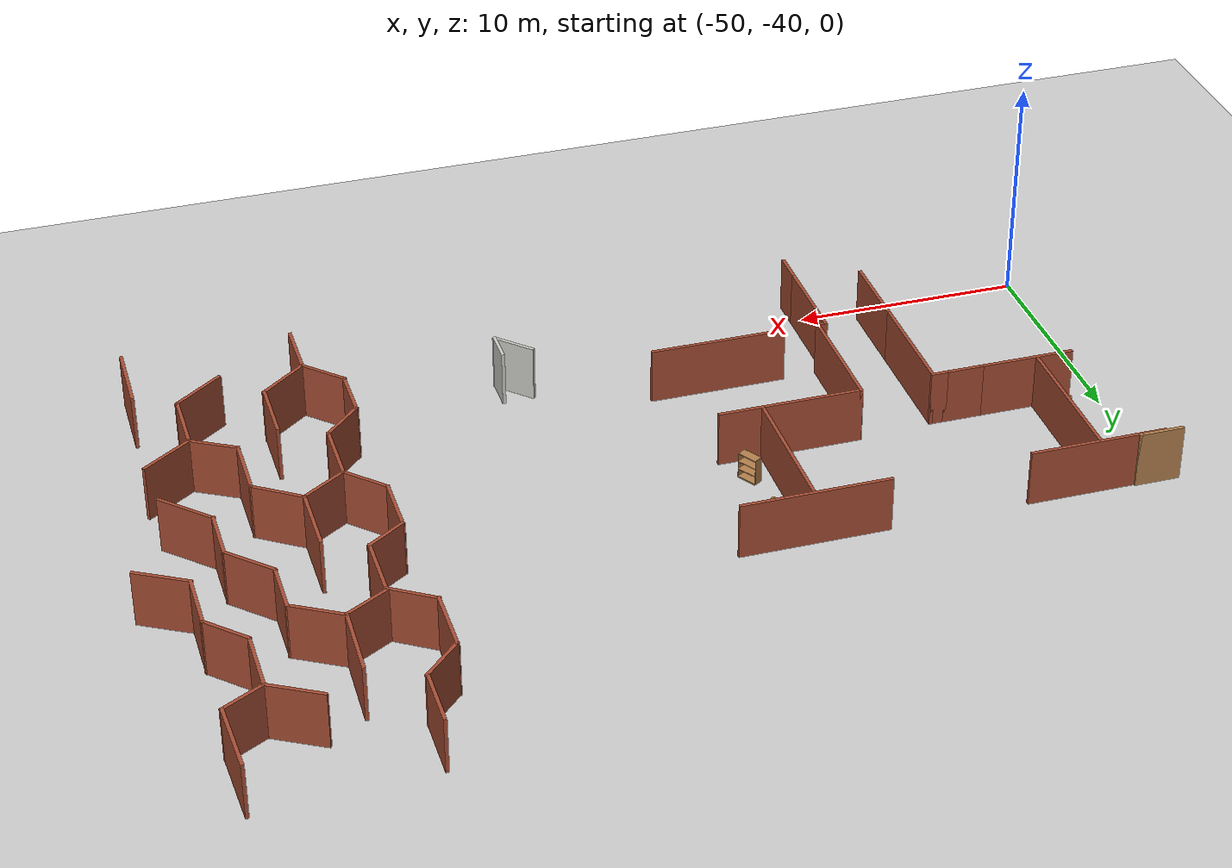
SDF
<sdf version="1.6">
 <world name="default">
  <model name="maze_rect_3">
   <pose>4e-06 -9.9e-05 0 0 -0 1.57001</pose>
   <link name="Wall_51">
    <collision name="Wall_51_Collision">
     <geometry><box><size>2.75 0.15 2.5</size></box></geometry>
     <pose>0 0 1.25 0 -0 0</pose>
    </collision>
    <visual name="Wall_51_Visual">
     <pose>0 0 1.25 0 -0 0</pose>
     <geometry><box><size>2.75 0.15 2.5</size></box></geometry>
     <material>
      <script><uri>file://media/materials/scripts/gazebo.material</uri><name>Gazebo/Bricks</name></script>
      <ambient>1 1 1 1</ambient>
     </material>
     <meta><layer>0</layer></meta>
    </visual>
    <pose>-40.4627 17.2051 0 0 -0 0</pose>
   </link>
   <link name="Wall_52">
    <collision name="Wall_52_Collision">
     <geometry><box><size>2.25 0.15 2.5</size></box></geometry>
     <pose>0 0 1.25 0 -0 0</pose>
    </collision>
    <visual name="Wall_52_Visual">
     <pose>0 0 1.25 0 -0 0</pose>
     <geometry><box><size>2.25 0.15 2.5</size></box></geometry>
     <material>
      <script><uri>file://media/materials/scripts/gazebo.material</uri><name>Gazebo/Bricks</name></script>
      <ambient>1 1 1 1</ambient>
     </material>
     <meta><layer>0</layer></meta>
    </visual>
    <pose>-38.4203 17.9476 0 0 -0 0.785398</pose>
   </link>
   <link name="Wall_53">
    <collision name="Wall_53_Collision">
     <geometry><box><size>2.5 0.15 2.5</size></box></geometry>
     <pose>0 0 1.25 0 -0 0</pose>
    </collision>
    <visual name="Wall_53_Visual">
     <pose>0 0 1.25 0 -0 0</pose>
     <geometry><box><size>2.5 0.15 2.5</size></box></geometry>
     <material>
      <script><uri>file://media/materials/scripts/gazebo.material</uri><name>Gazebo/Bricks</name></script>
      <ambient>1 1 1 1</ambient>
     </material>
     <meta><layer>0</layer></meta>
    </visual>
    <pose>-36.5028 18.69 0 0 -0 0</pose>
   </link>
   <link name="Wall_54">
    <collision name="Wall_54_Collision">
     <geometry><box><size>2.25 0.15 2.5</size></box></geometry>
     <pose>0 0 1.25 0 -0 0</pose>
    </collision>
    <visual name="Wall_54_Visual">
     <pose>0 0 1.25 0 -0 0</pose>
     <geometry><box><size>2.25 0.15 2.5</size></box></geometry>
     <material>
      <script><uri>file://media/materials/scripts/gazebo.material</uri><name>Gazebo/Bricks</name></script>
      <ambient>1 1 1 1</ambient>
     </material>
     <meta><layer>0</layer></meta>
    </visual>
    <pose>-34.5853 17.9476 0 0 -0 -0.785398</pose>
   </link>
   <link name="Wall_55">
    <collision name="Wall_55_Collision">
     <geometry><box><size>3 0.15 2.5</size></box></geometry>
     <pose>0 0 1.25 0 -0 0</pose>
    </collision>
    <visual name="Wall_55_Visual">
     <pose>0 0 1.25 0 -0 0</pose>
     <geometry><box><size>3 0.15 2.5</size></box></geometry>
     <material>
      <script><uri>file://media/materials/scripts/gazebo.material</uri><name>Gazebo/Bricks</name></script>
      <ambient>1 1 1 1</ambient>
     </material>
     <meta><layer>0</layer></meta>
    </visual>
    <pose>-32.4179 17.2051 0 0 -0 0</pose>
   </link>
   <link name="Wall_56">
    <collision name="Wall_56_Collision">
     <geometry><box><size>2.25 0.15 2.5</size></box></geometry>
     <pose>0 0 1.25 0 -0 0</pose>
    </collision>
    <visual name="Wall_56_Visual">
     <pose>0 0 1.25 0 -0 0</pose>
     <geometry><box><size>2.25 0.15 2.5</size></box></geometry>
     <material>
      <script><uri>file://media/materials/scripts/gazebo.material</uri><name>Gazebo/Bricks</name></script>
      <ambient>1 1 1 1</ambient>
     </material>
     <meta><layer>0</layer></meta>
    </visual>
    <pose>-30.2504 17.9476 0 0 -0 0.785398</pose>
   </link>
   <link name="Wall_57">
    <collision name="Wall_57_Collision">
     <geometry><box><size>2.75 0.15 2.5</size></box></geometry>
     <pose>0 0 1.25 0 -0 0</pose>
    </collision>
    <visual name="Wall_57_Visual">
     <pose>0 0 1.25 0 -0 0</pose>
     <geometry><box><size>2.75 0.15 2.5</size></box></geometry>
     <material>
      <script><uri>file://media/materials/scripts/gazebo.material</uri><name>Gazebo/Bricks</name></script>
      <ambient>1 1 1 1</ambient>
     </material>
     <meta><layer>0</layer></meta>
    </visual>
    <pose>-28.208 18.69 0 0 -0 0</pose>
   </link>
   <link name="Wall_58">
    <collision name="Wall_58_Collision">
     <geometry><box><size>2.02861 0.15 2.5</size></box></geometry>
     <pose>0 0 1.25 0 -0 0</pose>
    </collision>
    <visual name="Wall_58_Visual">
     <pose>0 0 1.25 0 -0 0</pose>
     <geometry><box><size>2.02861 0.15 2.5</size></box></geometry>
     <material>
      <script><uri>file://media/materials/scripts/gazebo.material</uri><name>Gazebo/Bricks</name></script>
      <ambient>1 1 1 1</ambient>
     </material>
     <meta><layer>0</layer></meta>
    </visual>
    <pose>-26.383 17.9112 0 0 -0 -0.97771</pose>
   </link>
   <link name="Wall_59">
    <collision name="Wall_59_Collision">
     <geometry><box><size>3 0.15 2.5</size></box></geometry>
     <pose>0 0 1.25 0 -0 0</pose>
    </collision>
    <visual name="Wall_59_Visual">
     <pose>0 0 1.25 0 -0 0</pose>
     <geometry><box><size>3 0.15 2.5</size></box></geometry>
     <material>
      <script><uri>file://media/materials/scripts/gazebo.material</uri><name>Gazebo/Bricks</name></script>
      <ambient>1 1 1 1</ambient>
     </material>
     <meta><layer>0</layer></meta>
    </visual>
    <pose>-24.4503 17.1323 0 0 -0 0</pose>
   </link>
   <link name="Wall_60">
    <collision name="Wall_60_Collision">
     <geometry><box><size>2.27808 0.15 2.5</size></box></geometry>
     <pose>0 0 1.25 0 -0 0</pose>
    </collision>
    <visual name="Wall_60_Visual">
     <pose>0 0 1.25 0 -0 0</pose>
     <geometry><box><size>2.27808 0.15 2.5</size></box></geometry>
     <material>
      <script><uri>file://media/materials/scripts/gazebo.material</uri><name>Gazebo/Bricks</name></script>
      <ambient>1 1 1 1</ambient>
     </material>
     <meta><layer>0</layer></meta>
    </visual>
    <pose>-22.4205 18.0194 0 0 -0 0.985867</pose>
   </link>
   <link name="Wall_603">
    <collision name="Wall_603_Collision">
     <geometry><box><size>3 0.15 2.5</size></box></geometry>
     <pose>0 0 1.25 0 -0 0</pose>
    </collision>
    <visual name="Wall_603_Visual">
     <pose>0 0 1.25 0 -0 0</pose>
     <geometry><box><size>3 0.15 2.5</size></box></geometry>
     <material>
      <script><uri>file://media/materials/scripts/gazebo.material</uri><name>Gazebo/Bricks</name></script>
      <ambient>1 1 1 1</ambient>
     </material>
     <meta><layer>0</layer></meta>
    </visual>
    <pose>-36.1998 15.2864 0 0 -0 3.14159</pose>
   </link>
   <link name="Wall_604">
    <collision name="Wall_604_Collision">
     <geometry><box><size>2.60902 0.15 2.5</size></box></geometry>
     <pose>0 0 1.25 0 -0 0</pose>
    </collision>
    <visual name="Wall_604_Visual">
     <pose>0 0 1.25 0 -0 0</pose>
     <geometry><box><size>2.60902 0.15 2.5</size></box></geometry>
     <material>
      <script><uri>file://media/materials/scripts/gazebo.material</uri><name>Gazebo/Bricks</name></script>
      <ambient>1 1 1 1</ambient>
     </material>
     <meta><layer>0</layer></meta>
    </visual>
    <pose>-38.3937 16.2458 0 0 -0 2.24649</pose>
   </link>
   <link name="Wall_606">
    <collision name="Wall_606_Collision">
     <geometry><box><size>2.67136 0.15 2.5</size></box></geometry>
     <pose>0 0 1.25 0 -0 0</pose>
    </collision>
    <visual name="Wall_606_Visual">
     <pose>0 0 1.25 0 -0 0</pose>
     <geometry><box><size>2.67136 0.15 2.5</size></box></geometry>
     <material>
      <script><uri>file://media/materials/scripts/gazebo.material</uri><name>Gazebo/Bricks</name></script>
      <ambient>1 1 1 1</ambient>
     </material>
     <meta><layer>0</layer></meta>
    </visual>
    <pose>-38.5842 12.6758 0 0 -0 -0.926085</pose>
   </link>
   <link name="Wall_607">
    <collision name="Wall_607_Collision">
     <geometry><box><size>3 0.15 2.5</size></box></geometry>
     <pose>0 0 1.25 0 -0 0</pose>
    </collision>
    <visual name="Wall_607_Visual">
     <pose>0 0 1.25 0 -0 0</pose>
     <geometry><box><size>3 0.15 2.5</size></box></geometry>
     <material>
      <script><uri>file://media/materials/scripts/gazebo.material</uri><name>Gazebo/Bricks</name></script>
      <ambient>1 1 1 1</ambient>
     </material>
     <meta><layer>0</layer></meta>
    </visual>
    <pose>-36.4016 11.6681 0 0 -0 0</pose>
   </link>
   <link name="Wall_608">
    <collision name="Wall_608_Collision">
     <geometry><box><size>2.25 0.15 2.5</size></box></geometry>
     <pose>0 0 1.25 0 -0 0</pose>
    </collision>
    <visual name="Wall_608_Visual">
     <pose>0 0 1.25 0 -0 0</pose>
     <geometry><box><size>2.25 0.15 2.5</size></box></geometry>
     <material>
      <script><uri>file://media/materials/scripts/gazebo.material</uri><name>Gazebo/Bricks</name></script>
      <ambient>1 1 1 1</ambient>
     </material>
     <meta><layer>0</layer></meta>
    </visual>
    <pose>-34.4516 12.5775 0 0 -0 1.0472</pose>
   </link>
   <link name="Wall_609">
    <collision name="Wall_609_Collision">
     <geometry><box><size>3 0.15 2.5</size></box></geometry>
     <pose>0 0 1.25 0 -0 0</pose>
    </collision>
    <visual name="Wall_609_Visual">
     <pose>0 0 1.25 0 -0 0</pose>
     <geometry><box><size>3 0.15 2.5</size></box></geometry>
     <material>
      <script><uri>file://media/materials/scripts/gazebo.material</uri><name>Gazebo/Bricks</name></script>
      <ambient>1 1 1 1</ambient>
     </material>
     <meta><layer>0</layer></meta>
    </visual>
    <pose>-32.5016 13.4868 0 0 -0 0</pose>
   </link>
   <link name="Wall_61">
    <collision name="Wall_61_Collision">
     <geometry><box><size>3 0.15 2.5</size></box></geometry>
     <pose>0 0 1.25 0 -0 0</pose>
    </collision>
    <visual name="Wall_61_Visual">
     <pose>0 0 1.25 0 -0 0</pose>
     <geometry><box><size>3 0.15 2.5</size></box></geometry>
     <material>
      <script><uri>file://media/materials/scripts/gazebo.material</uri><name>Gazebo/Bricks</name></script>
      <ambient>1 1 1 1</ambient>
     </material>
     <meta><layer>0</layer></meta>
    </visual>
    <pose>-20.408 18.9065 0 0 -0 0</pose>
   </link>
   <link name="Wall_610">
    <collision name="Wall_610_Collision">
     <geometry><box><size>2.44861 0.15 2.5</size></box></geometry>
     <pose>0 0 1.25 0 -0 0</pose>
    </collision>
    <visual name="Wall_610_Visual">
     <pose>0 0 1.25 0 -0 0</pose>
     <geometry><box><size>2.44861 0.15 2.5</size></box></geometry>
     <material>
      <script><uri>file://media/materials/scripts/gazebo.material</uri><name>Gazebo/Bricks</name></script>
      <ambient>1 1 1 1</ambient>
     </material>
     <meta><layer>0</layer></meta>
    </visual>
    <pose>-30.4228 14.432 0 0 -0 0.965609</pose>
   </link>
   <link name="Wall_611">
    <collision name="Wall_611_Collision">
     <geometry><box><size>2.34991 0.15 2.5</size></box></geometry>
     <pose>0 0 1.25 0 -0 0</pose>
    </collision>
    <visual name="Wall_611_Visual">
     <pose>0 0 1.25 0 -0 0</pose>
     <geometry><box><size>2.34991 0.15 2.5</size></box></geometry>
     <material>
      <script><uri>file://media/materials/scripts/gazebo.material</uri><name>Gazebo/Bricks</name></script>
      <ambient>1 1 1 1</ambient>
     </material>
     <meta><layer>0</layer></meta>
    </visual>
    <pose>-30.3809 16.2911 0 0 -0 2.16081</pose>
   </link>
   <link name="Wall_613">
    <collision name="Wall_613_Collision">
     <geometry><box><size>3.25 0.15 2.5</size></box></geometry>
     <pose>0 0 1.25 0 -0 0</pose>
    </collision>
    <visual name="Wall_613_Visual">
     <pose>0 0 1.25 0 -0 0</pose>
     <geometry><box><size>3.25 0.15 2.5</size></box></geometry>
     <material>
      <script><uri>file://media/materials/scripts/gazebo.material</uri><name>Gazebo/Bricks</name></script>
      <ambient>1 1 1 1</ambient>
     </material>
     <meta><layer>0</layer></meta>
    </visual>
    <pose>-28.2189 15.3771 0 0 -0 3.14159</pose>
   </link>
   <link name="Wall_618">
    <collision name="Wall_618_Collision">
     <geometry><box><size>2.63065 0.15 2.5</size></box></geometry>
     <pose>0 0 1.25 0 -0 0</pose>
    </collision>
    <visual name="Wall_618_Visual">
     <pose>0 0 1.25 0 -0 0</pose>
     <geometry><box><size>2.63065 0.15 2.5</size></box></geometry>
     <material>
      <script><uri>file://media/materials/scripts/gazebo.material</uri><name>Gazebo/Bricks</name></script>
      <ambient>1 1 1 1</ambient>
     </material>
     <meta><layer>0</layer></meta>
    </visual>
    <pose>-34.2662 10.6514 0 0 -0 2.18064</pose>
   </link>
   <link name="Wall_624">
    <collision name="Wall_624_Collision">
     <geometry><box><size>2.75 0.15 2.5</size></box></geometry>
     <pose>0 0 1.25 0 -0 0</pose>
    </collision>
    <visual name="Wall_624_Visual">
     <pose>0 0 1.25 0 -0 0</pose>
     <geometry><box><size>2.75 0.15 2.5</size></box></geometry>
     <material>
      <script><uri>file://media/materials/scripts/gazebo.material</uri><name>Gazebo/Bricks</name></script>
      <ambient>1 1 1 1</ambient>
     </material>
     <meta><layer>0</layer></meta>
    </visual>
    <pose>-30.3422 10.7459 0 0 -0 0.785398</pose>
   </link>
   <link name="Wall_625">
    <collision name="Wall_625_Collision">
     <geometry><box><size>2.5 0.15 2.5</size></box></geometry>
     <pose>0 0 1.25 0 -0 0</pose>
    </collision>
    <visual name="Wall_625_Visual">
     <pose>0 0 1.25 0 -0 0</pose>
     <geometry><box><size>2.5 0.15 2.5</size></box></geometry>
     <material>
      <script><uri>file://media/materials/scripts/gazebo.material</uri><name>Gazebo/Bricks</name></script>
      <ambient>1 1 1 1</ambient>
     </material>
     <meta><layer>0</layer></meta>
    </visual>
    <pose>-28.2479 11.6652 0 0 -0 0</pose>
   </link>
   <link name="Wall_626">
    <collision name="Wall_626_Collision">
     <geometry><box><size>2.5 0.15 2.5</size></box></geometry>
     <pose>0 0 1.25 0 -0 0</pose>
    </collision>
    <visual name="Wall_626_Visual">
     <pose>0 0 1.25 0 -0 0</pose>
     <geometry><box><size>2.5 0.15 2.5</size></box></geometry>
     <material>
      <script><uri>file://media/materials/scripts/gazebo.material</uri><name>Gazebo/Bricks</name></script>
      <ambient>1 1 1 1</ambient>
     </material>
     <meta><layer>0</layer></meta>
    </visual>
    <pose>-26.2421 12.496 0 0 -0 0.785398</pose>
   </link>
   <link name="Wall_627">
    <collision name="Wall_627_Collision">
     <geometry><box><size>2.5 0.15 2.5</size></box></geometry>
     <pose>0 0 1.25 0 -0 0</pose>
    </collision>
    <visual name="Wall_627_Visual">
     <pose>0 0 1.25 0 -0 0</pose>
     <geometry><box><size>2.5 0.15 2.5</size></box></geometry>
     <material>
      <script><uri>file://media/materials/scripts/gazebo.material</uri><name>Gazebo/Bricks</name></script>
      <ambient>1 1 1 1</ambient>
     </material>
     <meta><layer>0</layer></meta>
    </visual>
    <pose>-24.2362 13.3269 0 0 -0 0</pose>
   </link>
   <link name="Wall_628">
    <collision name="Wall_628_Collision">
     <geometry><box><size>2.51758 0.15 2.5</size></box></geometry>
     <pose>0 0 1.25 0 -0 0</pose>
    </collision>
    <visual name="Wall_628_Visual">
     <pose>0 0 1.25 0 -0 0</pose>
     <geometry><box><size>2.51758 0.15 2.5</size></box></geometry>
     <material>
      <script><uri>file://media/materials/scripts/gazebo.material</uri><name>Gazebo/Bricks</name></script>
      <ambient>1 1 1 1</ambient>
     </material>
     <meta><layer>0</layer></meta>
    </visual>
    <pose>-22.4563 14.3445 0 0 -0 1.03447</pose>
   </link>
   <link name="Wall_63">
    <collision name="Wall_63_Collision">
     <geometry><box><size>2.25 0.15 2.5</size></box></geometry>
     <pose>0 0 1.25 0 -0 0</pose>
    </collision>
    <visual name="Wall_63_Visual">
     <pose>0 0 1.25 0 -0 0</pose>
     <geometry><box><size>2.25 0.15 2.5</size></box></geometry>
     <material>
      <script><uri>file://media/materials/scripts/gazebo.material</uri><name>Gazebo/Bricks</name></script>
      <ambient>1 1 1 1</ambient>
     </material>
     <meta><layer>0</layer></meta>
    </visual>
    <pose>-18.2405 18.1641 0 0 -0 -0.785398</pose>
   </link>
   <link name="Wall_630">
    <collision name="Wall_630_Collision">
     <geometry><box><size>2.25 0.15 2.5</size></box></geometry>
     <pose>0 0 1.25 0 -0 0</pose>
    </collision>
    <visual name="Wall_630_Visual">
     <pose>0 0 1.25 0 -0 0</pose>
     <geometry><box><size>2.25 0.15 2.5</size></box></geometry>
     <material>
      <script><uri>file://media/materials/scripts/gazebo.material</uri><name>Gazebo/Bricks</name></script>
      <ambient>1 1 1 1</ambient>
     </material>
     <meta><layer>0</layer></meta>
    </visual>
    <pose>-22.3938 16.2714 0 0 -0 2.0944</pose>
   </link>
   <link name="Wall_632">
    <collision name="Wall_632_Collision">
     <geometry><box><size>3.3934 0.15 2.5</size></box></geometry>
     <pose>0 0 1.25 0 -0 0</pose>
    </collision>
    <visual name="Wall_632_Visual">
     <pose>0 0 1.25 0 -0 0</pose>
     <geometry><box><size>3.3934 0.15 2.5</size></box></geometry>
     <material>
      <script><uri>file://media/materials/scripts/gazebo.material</uri><name>Gazebo/Bricks</name></script>
      <ambient>1 1 1 1</ambient>
     </material>
     <meta><layer>0</layer></meta>
    </visual>
    <pose>-20.2302 15.3216 0 0 -0 3.11665</pose>
   </link>
   <link name="Wall_64">
    <collision name="Wall_64_Collision">
     <geometry><box><size>2.75 0.15 2.5</size></box></geometry>
     <pose>0 0 1.25 0 -0 0</pose>
    </collision>
    <visual name="Wall_64_Visual">
     <pose>0 0 1.25 0 -0 0</pose>
     <geometry><box><size>2.75 0.15 2.5</size></box></geometry>
     <material>
      <script><uri>file://media/materials/scripts/gazebo.material</uri><name>Gazebo/Bricks</name></script>
      <ambient>1 1 1 1</ambient>
     </material>
     <meta><layer>0</layer></meta>
    </visual>
    <pose>-16.198 17.4216 0 0 -0 0</pose>
   </link>
   <link name="Wall_661">
    <collision name="Wall_661_Collision">
     <geometry><box><size>3.36585 0.15 2.5</size></box></geometry>
     <pose>0 0 1.25 0 -0 0</pose>
    </collision>
    <visual name="Wall_661_Visual">
     <pose>0 0 1.25 0 -0 0</pose>
     <geometry><box><size>3.36585 0.15 2.5</size></box></geometry>
     <material>
      <script><uri>file://media/materials/scripts/gazebo.material</uri><name>Gazebo/Bricks</name></script>
      <ambient>1 1 1 1</ambient>
     </material>
     <meta><layer>0</layer></meta>
    </visual>
    <pose>-40.3949 9.96727 0 0 -0 3.13027</pose>
   </link>
   <link name="Wall_665">
    <collision name="Wall_665_Collision">
     <geometry><box><size>2.5 0.15 2.5</size></box></geometry>
     <pose>0 0 1.25 0 -0 0</pose>
    </collision>
    <visual name="Wall_665_Visual">
     <pose>0 0 1.25 0 -0 0</pose>
     <geometry><box><size>2.5 0.15 2.5</size></box></geometry>
     <material>
      <script><uri>file://media/materials/scripts/gazebo.material</uri><name>Gazebo/Bricks</name></script>
      <ambient>1 1 1 1</ambient>
     </material>
     <meta><layer>0</layer></meta>
    </visual>
    <pose>-18.0935 12.6192 0 0 -0 -2.0944</pose>
   </link>
   <link name="Wall_666">
    <collision name="Wall_666_Collision">
     <geometry><box><size>3 0.15 2.5</size></box></geometry>
     <pose>0 0 1.25 0 -0 0</pose>
    </collision>
    <visual name="Wall_666_Visual">
     <pose>0 0 1.25 0 -0 0</pose>
     <geometry><box><size>3 0.15 2.5</size></box></geometry>
     <material>
      <script><uri>file://media/materials/scripts/gazebo.material</uri><name>Gazebo/Bricks</name></script>
      <ambient>1 1 1 1</ambient>
     </material>
     <meta><layer>0</layer></meta>
    </visual>
    <pose>-20.106 11.6016 0 0 -0 3.14159</pose>
   </link>
   <link name="Wall_667">
    <collision name="Wall_667_Collision">
     <geometry><box><size>2.25 0.15 2.5</size></box></geometry>
     <pose>0 0 1.25 0 -0 0</pose>
    </collision>
    <visual name="Wall_667_Visual">
     <pose>0 0 1.25 0 -0 0</pose>
     <geometry><box><size>2.25 0.15 2.5</size></box></geometry>
     <material>
      <script><uri>file://media/materials/scripts/gazebo.material</uri><name>Gazebo/Bricks</name></script>
      <ambient>1 1 1 1</ambient>
     </material>
     <meta><layer>0</layer></meta>
    </visual>
    <pose>-22.2734 10.8591 0 0 -0 -2.35619</pose>
   </link>
   <link name="Wall_668">
    <collision name="Wall_668_Collision">
     <geometry><box><size>2.75 0.15 2.5</size></box></geometry>
     <pose>0 0 1.25 0 -0 0</pose>
    </collision>
    <visual name="Wall_668_Visual">
     <pose>0 0 1.25 0 -0 0</pose>
     <geometry><box><size>2.75 0.15 2.5</size></box></geometry>
     <material>
      <script><uri>file://media/materials/scripts/gazebo.material</uri><name>Gazebo/Bricks</name></script>
      <ambient>1 1 1 1</ambient>
     </material>
     <meta><layer>0</layer></meta>
    </visual>
    <pose>-24.3159 10.1167 0 0 -0 3.14159</pose>
   </link>
   <link name="Wall_669">
    <collision name="Wall_669_Collision">
     <geometry><box><size>2.5 0.15 2.5</size></box></geometry>
     <pose>0 0 1.25 0 -0 0</pose>
    </collision>
    <visual name="Wall_669_Visual">
     <pose>0 0 1.25 0 -0 0</pose>
     <geometry><box><size>2.5 0.15 2.5</size></box></geometry>
     <material>
      <script><uri>file://media/materials/scripts/gazebo.material</uri><name>Gazebo/Bricks</name></script>
      <ambient>1 1 1 1</ambient>
     </material>
     <meta><layer>0</layer></meta>
    </visual>
    <pose>-26.2034 9.09908 0 0 -0 -2.0944</pose>
   </link>
   <link name="Wall_681">
    <collision name="Wall_681_Collision">
     <geometry><box><size>2.09749 0.15 2.5</size></box></geometry>
     <pose>0 0 1.25 0 -0 0</pose>
    </collision>
    <visual name="Wall_681_Visual">
     <pose>0 0 1.25 0 -0 0</pose>
     <geometry><box><size>2.09749 0.15 2.5</size></box></geometry>
     <material>
      <script><uri>file://media/materials/scripts/gazebo.material</uri><name>Gazebo/Bricks</name></script>
      <ambient>1 1 1 1</ambient>
     </material>
     <meta><layer>0</layer></meta>
    </visual>
    <pose>-18.2166 10.7457 0 0 -0 2.06792</pose>
   </link>
   <link name="Wall_683">
    <collision name="Wall_683_Collision">
     <geometry><box><size>3.33973 0.15 2.5</size></box></geometry>
     <pose>0 0 1.25 0 -0 0</pose>
    </collision>
    <visual name="Wall_683_Visual">
     <pose>0 0 1.25 0 -0 0</pose>
     <geometry><box><size>3.33973 0.15 2.5</size></box></geometry>
     <material>
      <script><uri>file://media/materials/scripts/gazebo.material</uri><name>Gazebo/Bricks</name></script>
      <ambient>1 1 1 1</ambient>
     </material>
     <meta><layer>0</layer></meta>
    </visual>
    <pose>-16.1587 9.95606 0 0 -0 -3.10005</pose>
   </link>
   <static>1</static>
  </model>
  <model name="map_palace_v2_model_1_0">
   <pose>-3.1e-05 -55 0 0 -0 3.14</pose>
   <link name="Wall_272">
    <collision name="Wall_272_Collision">
     <geometry><box><size>4.25 0.15 2.5</size></box></geometry>
     <pose>0 0 1.25 0 -0 0</pose>
    </collision>
    <visual name="Wall_272_Visual">
     <pose>0 0 1.25 0 -0 0</pose>
     <geometry><box><size>4.25 0.15 2.5</size></box></geometry>
     <material>
      <script><uri>file://media/materials/scripts/gazebo.material</uri><name>Gazebo/Bricks</name></script>
      <ambient>1 1 1 1</ambient>
     </material>
     <meta><layer>0</layer></meta>
    </visual>
    <pose>46.7523 -24.2485 0 0 -0 3.14159</pose>
   </link>
   <link name="Wall_273">
    <collision name="Wall_273_Collision">
     <geometry><box><size>1.75 0.15 2.5</size></box></geometry>
     <pose>0 0 1.25 0 -0 0</pose>
    </collision>
    <visual name="Wall_273_Visual">
     <pose>0 0 1.25 0 -0 0</pose>
     <geometry><box><size>1.75 0.15 2.5</size></box></geometry>
     <material>
      <script><uri>file://media/materials/scripts/gazebo.material</uri><name>Gazebo/Bricks</name></script>
      <ambient>1 1 1 1</ambient>
     </material>
     <meta><layer>0</layer></meta>
    </visual>
    <pose>43.9023 -24.2485 0 0 -0 3.14159</pose>
   </link>
   <link name="Wall_274">
    <collision name="Wall_274_Collision">
     <geometry><box><size>0.75 0.15 2.5</size></box></geometry>
     <pose>0 0 1.25 0 -0 0</pose>
    </collision>
    <visual name="Wall_274_Visual">
     <pose>0 0 1.25 0 -0 0</pose>
     <geometry><box><size>0.75 0.15 2.5</size></box></geometry>
     <material>
      <script><uri>file://media/materials/scripts/gazebo.material</uri><name>Gazebo/Bricks</name></script>
      <ambient>1 1 1 1</ambient>
     </material>
     <meta><layer>0</layer></meta>
    </visual>
    <pose>42.8023 -24.2485 0 0 -0 3.14159</pose>
   </link>
   <link name="Wall_275">
    <collision name="Wall_275_Collision">
     <geometry><box><size>5.25 0.15 2.5</size></box></geometry>
     <pose>0 0 1.25 0 -0 0</pose>
    </collision>
    <visual name="Wall_275_Visual">
     <pose>0 0 1.25 0 -0 0</pose>
     <geometry><box><size>5.25 0.15 2.5</size></box></geometry>
     <material>
      <script><uri>file://media/materials/scripts/gazebo.material</uri><name>Gazebo/Bricks</name></script>
      <ambient>1 1 1 1</ambient>
     </material>
     <meta><layer>0</layer></meta>
    </visual>
    <pose>42.5023 -21.6985 0 0 -0 1.5708</pose>
   </link>
   <link name="Wall_277">
    <collision name="Wall_277_Collision">
     <geometry><box><size>6.75 0.15 2.5</size></box></geometry>
     <pose>0 0 1.25 0 -0 0</pose>
    </collision>
    <visual name="Wall_277_Visual">
     <pose>0 0 1.25 0 -0 0</pose>
     <geometry><box><size>6.75 0.15 2.5</size></box></geometry>
     <material>
      <script><uri>file://media/materials/scripts/gazebo.material</uri><name>Gazebo/Bricks</name></script>
      <ambient>1 1 1 1</ambient>
     </material>
     <meta><layer>0</layer></meta>
    </visual>
    <pose>47.2274 -27.5415 0 0 -0 -1.5708</pose>
   </link>
   <link name="Wall_279">
    <collision name="Wall_279_Collision">
     <geometry><box><size>6.5 0.15 2.5</size></box></geometry>
     <pose>0 0 1.25 0 -0 0</pose>
    </collision>
    <visual name="Wall_279_Visual">
     <pose>0 0 1.25 0 -0 0</pose>
     <geometry><box><size>6.5 0.15 2.5</size></box></geometry>
     <material>
      <script><uri>file://media/materials/scripts/gazebo.material</uri><name>Gazebo/Bricks</name></script>
      <ambient>1 1 1 1</ambient>
     </material>
     <meta><layer>0</layer></meta>
    </visual>
    <pose>34.8569 -27.66 0 0 -0 1.5708</pose>
   </link>
   <link name="Wall_280">
    <collision name="Wall_280_Collision">
     <geometry><box><size>2 0.15 2.5</size></box></geometry>
     <pose>0 0 1.25 0 -0 0</pose>
    </collision>
    <visual name="Wall_280_Visual">
     <pose>0 0 1.25 0 -0 0</pose>
     <geometry><box><size>2 0.15 2.5</size></box></geometry>
     <material>
      <script><uri>file://media/materials/scripts/gazebo.material</uri><name>Gazebo/Bricks</name></script>
      <ambient>1 1 1 1</ambient>
     </material>
     <meta><layer>0</layer></meta>
    </visual>
    <pose>33.9319 -24.4851 0 0 -0 3.14159</pose>
   </link>
   <link name="Wall_283">
    <collision name="Wall_283_Collision">
     <geometry><box><size>4.5 0.15 2.5</size></box></geometry>
     <pose>0 0 1.25 0 -0 0</pose>
    </collision>
    <visual name="Wall_283_Visual">
     <pose>0 0 1.25 0 -0 0</pose>
     <geometry><box><size>4.5 0.15 2.5</size></box></geometry>
     <material>
      <script><uri>file://media/materials/scripts/gazebo.material</uri><name>Gazebo/Bricks</name></script>
      <ambient>1 1 1 1</ambient>
     </material>
     <meta><layer>0</layer></meta>
    </visual>
    <pose>37.0319 -24.4851 0 0 -0 0</pose>
   </link>
   <link name="Wall_284">
    <collision name="Wall_284_Collision">
     <geometry><box><size>5.5 0.15 2.5</size></box></geometry>
     <pose>0 0 1.25 0 -0 0</pose>
    </collision>
    <visual name="Wall_284_Visual">
     <pose>0 0 1.25 0 -0 0</pose>
     <geometry><box><size>5.5 0.15 2.5</size></box></geometry>
     <material>
      <script><uri>file://media/materials/scripts/gazebo.material</uri><name>Gazebo/Bricks</name></script>
      <ambient>1 1 1 1</ambient>
     </material>
     <meta><layer>0</layer></meta>
    </visual>
    <pose>39.2069 -21.8101 0 0 -0 1.5708</pose>
   </link>
   <link name="Wall_286">
    <collision name="Wall_286_Collision">
     <geometry><box><size>6 0.15 2.5</size></box></geometry>
     <pose>0 0 1.25 0 -0 0</pose>
    </collision>
    <visual name="Wall_286_Visual">
     <pose>0 0 1.25 0 -0 0</pose>
     <geometry><box><size>6 0.15 2.5</size></box></geometry>
     <material>
      <script><uri>file://media/materials/scripts/gazebo.material</uri><name>Gazebo/Bricks</name></script>
      <ambient>1 1 1 1</ambient>
     </material>
     <meta><layer>0</layer></meta>
    </visual>
    <pose>34.6819 -19.1351 0 0 -0 3.14159</pose>
   </link>
   <link name="Wall_288">
    <collision name="Wall_288_Collision">
     <geometry><box><size>0.5 0.15 2.5</size></box></geometry>
     <pose>0 0 1.25 0 -0 0</pose>
    </collision>
    <visual name="Wall_288_Visual">
     <pose>0 0 1.25 0 -0 0</pose>
     <geometry><box><size>0.5 0.15 2.5</size></box></geometry>
     <material>
      <script><uri>file://media/materials/scripts/gazebo.material</uri><name>Gazebo/Bricks</name></script>
      <ambient>1 1 1 1</ambient>
     </material>
     <meta><layer>0</layer></meta>
    </visual>
    <pose>39.3819 -19.1351 0 0 -0 0</pose>
   </link>
   <link name="Wall_289">
    <collision name="Wall_289_Collision">
     <geometry><box><size>4.25 0.15 2.5</size></box></geometry>
     <pose>0 0 1.25 0 -0 0</pose>
    </collision>
    <visual name="Wall_289_Visual">
     <pose>0 0 1.25 0 -0 0</pose>
     <geometry><box><size>4.25 0.15 2.5</size></box></geometry>
     <material>
      <script><uri>file://media/materials/scripts/gazebo.material</uri><name>Gazebo/Bricks</name></script>
      <ambient>1 1 1 1</ambient>
     </material>
     <meta><layer>0</layer></meta>
    </visual>
    <pose>39.5569 -17.085 0 0 -0 1.5708</pose>
   </link>
   <link name="Wall_290">
    <collision name="Wall_290_Collision">
     <geometry><box><size>1.5 0.15 2.5</size></box></geometry>
     <pose>0 0 1.25 0 -0 0</pose>
    </collision>
    <visual name="Wall_290_Visual">
     <pose>0 0 1.25 0 -0 0</pose>
     <geometry><box><size>1.5 0.15 2.5</size></box></geometry>
     <material>
      <script><uri>file://media/materials/scripts/gazebo.material</uri><name>Gazebo/Bricks</name></script>
      <ambient>1 1 1 1</ambient>
     </material>
     <meta><layer>0</layer></meta>
    </visual>
    <pose>39.5569 -14.36 0 0 -0 1.5708</pose>
   </link>
   <link name="Wall_302">
    <collision name="Wall_302_Collision">
     <geometry><box><size>3.75 0.15 2.5</size></box></geometry>
     <pose>0 0 1.25 0 -0 0</pose>
    </collision>
    <visual name="Wall_302_Visual">
     <pose>0 0 1.25 0 -0 0</pose>
     <geometry><box><size>3.75 0.15 2.5</size></box></geometry>
     <material>
      <script><uri>file://media/materials/scripts/gazebo.material</uri><name>Gazebo/Bricks</name></script>
      <ambient>1 1 1 1</ambient>
     </material>
     <meta><layer>0</layer></meta>
    </visual>
    <pose>42.5023 -17.3485 0 0 -0 1.5708</pose>
   </link>
   <link name="Wall_33">
    <collision name="Wall_33_Collision">
     <geometry><box><size>6.5 0.15 2.5</size></box></geometry>
     <pose>0 0 1.25 0 -0 0</pose>
    </collision>
    <visual name="Wall_33_Visual">
     <pose>0 0 1.25 0 -0 0</pose>
     <geometry><box><size>6.5 0.15 2.5</size></box></geometry>
     <material>
      <script><uri>file://media/materials/scripts/gazebo.material</uri><name>Gazebo/Bricks</name></script>
      <ambient>1 1 1 1</ambient>
     </material>
     <meta><layer>0</layer></meta>
    </visual>
    <pose>34.9557 -30.8525 0 0 -0 0</pose>
   </link>
   <link name="Wall_35">
    <collision name="Wall_35_Collision">
     <geometry><box><size>6 0.15 2.5</size></box></geometry>
     <pose>0 0 1.25 0 -0 0</pose>
    </collision>
    <visual name="Wall_35_Visual">
     <pose>0 0 1.25 0 -0 0</pose>
     <geometry><box><size>6 0.15 2.5</size></box></geometry>
     <material>
      <script><uri>file://media/materials/scripts/gazebo.material</uri><name>Gazebo/Bricks</name></script>
      <ambient>0.760784 0.662745 0.627451 1</ambient>
     </material>
     <meta><layer>0</layer></meta>
    </visual>
    <pose>47.1557 -30.8525 0 0 -0 0</pose>
   </link>
   <static>1</static>
  </model>
  <model name="bookshelf_clone_0">
   <static>1</static>
   <link name="link">
    <inertial><mass>1</mass></inertial>
    <collision name="back">
     <pose>0 0.005 0.6 0 -0 0</pose>
     <geometry><box><size>0.9 0.01 1.2</size></box></geometry>
    </collision>
    <visual name="visual1">
     <pose>0 0.005 0.6 0 -0 0</pose>
     <geometry><box><size>0.9 0.01 1.2</size></box></geometry>
     <material>
      <script><uri>file://media/materials/scripts/gazebo.material</uri><name>Gazebo/Wood</name></script>
     </material>
    </visual>
    <collision name="left_side">
     <pose>0.45 -0.195 0.6 0 -0 0</pose>
     <geometry><box><size>0.02 0.4 1.2</size></box></geometry>
    </collision>
    <visual name="visual2">
     <pose>0.45 -0.195 0.6 0 -0 0</pose>
     <geometry><box><size>0.02 0.4 1.2</size></box></geometry>
     <material>
      <script><uri>file://media/materials/scripts/gazebo.material</uri><name>Gazebo/Wood</name></script>
     </material>
    </visual>
    <collision name="right_side">
     <pose>-0.45 -0.195 0.6 0 -0 0</pose>
     <geometry><box><size>0.02 0.4 1.2</size></box></geometry>
    </collision>
    <visual name="visual3">
     <pose>-0.45 -0.195 0.6 0 -0 0</pose>
     <geometry><box><size>0.02 0.4 1.2</size></box></geometry>
     <material>
      <script><uri>file://media/materials/scripts/gazebo.material</uri><name>Gazebo/Wood</name></script>
     </material>
    </visual>
    <collision name="bottom">
     <pose>0 -0.195 0.03 0 -0 0</pose>
     <geometry><box><size>0.88 0.4 0.06</size></box></geometry>
    </collision>
    <visual name="visual4">
     <pose>0 -0.195 0.03 0 -0 0</pose>
     <geometry><box><size>0.88 0.4 0.06</size></box></geometry>
     <material>
      <script><uri>file://media/materials/scripts/gazebo.material</uri><name>Gazebo/Wood</name></script>
     </material>
    </visual>
    <collision name="top">
     <pose>0 -0.195 1.19 0 -0 0</pose>
     <geometry><box><size>0.88 0.4 0.02</size></box></geometry>
    </collision>
    <visual name="visual5">
     <pose>0 -0.195 1.19 0 -0 0</pose>
     <geometry><box><size>0.88 0.4 0.02</size></box></geometry>
     <material>
      <script><uri>file://media/materials/scripts/gazebo.material</uri><name>Gazebo/Wood</name></script>
     </material>
    </visual>
    <collision name="low_shelf">
     <pose>0 -0.195 0.43 0 -0 0</pose>
     <geometry><box><size>0.88 0.4 0.02</size></box></geometry>
    </collision>
    <visual name="visual6">
     <pose>0 -0.195 0.43 0 -0 0</pose>
     <geometry><box><size>0.88 0.4 0.02</size></box></geometry>
     <material>
      <script><uri>file://media/materials/scripts/gazebo.material</uri><name>Gazebo/Wood</name></script>
     </material>
    </visual>
    <collision name="high_shelf">
     <pose>0 -0.195 0.8 0 -0 0</pose>
     <geometry><box><size>0.88 0.4 0.02</size></box></geometry>
    </collision>
    <visual name="visual7">
     <pose>0 -0.195 0.8 0 -0 0</pose>
     <geometry><box><size>0.88 0.4 0.02</size></box></geometry>
     <material>
      <script><uri>file://media/materials/scripts/gazebo.material</uri><name>Gazebo/Wood</name></script>
     </material>
    </visual>
   </link>
   <pose>-33.7186 -25.4135 0 0 -0 0.8458</pose>
  </model>
  <model name="bookshelf_clone_2">
   <static>1</static>
   <link name="link">
    <inertial><mass>1</mass></inertial>
    <collision name="back">
     <pose>0 0.005 0.6 0 -0 0</pose>
     <geometry><box><size>0.9 0.01 1.2</size></box></geometry>
    </collision>
    <visual name="visual1">
     <pose>0 0.005 0.6 0 -0 0</pose>
     <geometry><box><size>0.9 0.01 1.2</size></box></geometry>
     <material>
      <script><uri>file://media/materials/scripts/gazebo.material</uri><name>Gazebo/Wood</name></script>
     </material>
    </visual>
    <collision name="left_side">
     <pose>0.45 -0.195 0.6 0 -0 0</pose>
     <geometry><box><size>0.02 0.4 1.2</size></box></geometry>
    </collision>
    <visual name="visual2">
     <pose>0.45 -0.195 0.6 0 -0 0</pose>
     <geometry><box><size>0.02 0.4 1.2</size></box></geometry>
     <material>
      <script><uri>file://media/materials/scripts/gazebo.material</uri><name>Gazebo/Wood</name></script>
     </material>
    </visual>
    <collision name="right_side">
     <pose>-0.45 -0.195 0.6 0 -0 0</pose>
     <geometry><box><size>0.02 0.4 1.2</size></box></geometry>
    </collision>
    <visual name="visual3">
     <pose>-0.45 -0.195 0.6 0 -0 0</pose>
     <geometry><box><size>0.02 0.4 1.2</size></box></geometry>
     <material>
      <script><uri>file://media/materials/scripts/gazebo.material</uri><name>Gazebo/Wood</name></script>
     </material>
    </visual>
    <collision name="bottom">
     <pose>0 -0.195 0.03 0 -0 0</pose>
     <geometry><box><size>0.88 0.4 0.06</size></box></geometry>
    </collision>
    <visual name="visual4">
     <pose>0 -0.195 0.03 0 -0 0</pose>
     <geometry><box><size>0.88 0.4 0.06</size></box></geometry>
     <material>
      <script><uri>file://media/materials/scripts/gazebo.material</uri><name>Gazebo/Wood</name></script>
     </material>
    </visual>
    <collision name="top">
     <pose>0 -0.195 1.19 0 -0 0</pose>
     <geometry><box><size>0.88 0.4 0.02</size></box></geometry>
    </collision>
    <visual name="visual5">
     <pose>0 -0.195 1.19 0 -0 0</pose>
     <geometry><box><size>0.88 0.4 0.02</size></box></geometry>
     <material>
      <script><uri>file://media/materials/scripts/gazebo.material</uri><name>Gazebo/Wood</name></script>
     </material>
    </visual>
    <collision name="low_shelf">
     <pose>0 -0.195 0.43 0 -0 0</pose>
     <geometry><box><size>0.88 0.4 0.02</size></box></geometry>
    </collision>
    <visual name="visual6">
     <pose>0 -0.195 0.43 0 -0 0</pose>
     <geometry><box><size>0.88 0.4 0.02</size></box></geometry>
     <material>
      <script><uri>file://media/materials/scripts/gazebo.material</uri><name>Gazebo/Wood</name></script>
     </material>
    </visual>
    <collision name="high_shelf">
     <pose>0 -0.195 0.8 0 -0 0</pose>
     <geometry><box><size>0.88 0.4 0.02</size></box></geometry>
    </collision>
    <visual name="visual7">
     <pose>0 -0.195 0.8 0 -0 0</pose>
     <geometry><box><size>0.88 0.4 0.02</size></box></geometry>
     <material>
      <script><uri>file://media/materials/scripts/gazebo.material</uri><name>Gazebo/Wood</name></script>
     </material>
    </visual>
   </link>
   <pose>-33.9664 -29.1338 0 0 -0 2.14201</pose>
  </model>
  <model name="bookshelf_clone_0_clone">
   <static>1</static>
   <link name="link">
    <inertial><mass>1</mass></inertial>
    <collision name="back">
     <pose>0 0.005 0.6 0 -0 0</pose>
     <geometry><box><size>0.9 0.01 1.2</size></box></geometry>
    </collision>
    <visual name="visual1">
     <pose>0 0.005 0.6 0 -0 0</pose>
     <geometry><box><size>0.9 0.01 1.2</size></box></geometry>
     <material>
      <script><uri>file://media/materials/scripts/gazebo.material</uri><name>Gazebo/Wood</name></script>
     </material>
    </visual>
    <collision name="left_side">
     <pose>0.45 -0.195 0.6 0 -0 0</pose>
     <geometry><box><size>0.02 0.4 1.2</size></box></geometry>
    </collision>
    <visual name="visual2">
     <pose>0.45 -0.195 0.6 0 -0 0</pose>
     <geometry><box><size>0.02 0.4 1.2</size></box></geometry>
     <material>
      <script><uri>file://media/materials/scripts/gazebo.material</uri><name>Gazebo/Wood</name></script>
     </material>
    </visual>
    <collision name="right_side">
     <pose>-0.45 -0.195 0.6 0 -0 0</pose>
     <geometry><box><size>0.02 0.4 1.2</size></box></geometry>
    </collision>
    <visual name="visual3">
     <pose>-0.45 -0.195 0.6 0 -0 0</pose>
     <geometry><box><size>0.02 0.4 1.2</size></box></geometry>
     <material>
      <script><uri>file://media/materials/scripts/gazebo.material</uri><name>Gazebo/Wood</name></script>
     </material>
    </visual>
    <collision name="bottom">
     <pose>0 -0.195 0.03 0 -0 0</pose>
     <geometry><box><size>0.88 0.4 0.06</size></box></geometry>
    </collision>
    <visual name="visual4">
     <pose>0 -0.195 0.03 0 -0 0</pose>
     <geometry><box><size>0.88 0.4 0.06</size></box></geometry>
     <material>
      <script><uri>file://media/materials/scripts/gazebo.material</uri><name>Gazebo/Wood</name></script>
     </material>
    </visual>
    <collision name="top">
     <pose>0 -0.195 1.19 0 -0 0</pose>
     <geometry><box><size>0.88 0.4 0.02</size></box></geometry>
    </collision>
    <visual name="visual5">
     <pose>0 -0.195 1.19 0 -0 0</pose>
     <geometry><box><size>0.88 0.4 0.02</size></box></geometry>
     <material>
      <script><uri>file://media/materials/scripts/gazebo.material</uri><name>Gazebo/Wood</name></script>
     </material>
    </visual>
    <collision name="low_shelf">
     <pose>0 -0.195 0.43 0 -0 0</pose>
     <geometry><box><size>0.88 0.4 0.02</size></box></geometry>
    </collision>
    <visual name="visual6">
     <pose>0 -0.195 0.43 0 -0 0</pose>
     <geometry><box><size>0.88 0.4 0.02</size></box></geometry>
     <material>
      <script><uri>file://media/materials/scripts/gazebo.material</uri><name>Gazebo/Wood</name></script>
     </material>
    </visual>
    <collision name="high_shelf">
     <pose>0 -0.195 0.8 0 -0 0</pose>
     <geometry><box><size>0.88 0.4 0.02</size></box></geometry>
    </collision>
    <visual name="visual7">
     <pose>0 -0.195 0.8 0 -0 0</pose>
     <geometry><box><size>0.88 0.4 0.02</size></box></geometry>
     <material>
      <script><uri>file://media/materials/scripts/gazebo.material</uri><name>Gazebo/Wood</name></script>
     </material>
    </visual>
   </link>
   <pose>-48.0057 -25.0974 0 0 0 -0.949822</pose>
  </model>
  <model name="bookshelf_clone_1_clone_0">
   <static>1</static>
   <link name="link">
    <inertial><mass>1</mass></inertial>
    <collision name="back">
     <pose>0 0.005 0.6 0 -0 0</pose>
     <geometry><box><size>0.9 0.01 1.2</size></box></geometry>
    </collision>
    <visual name="visual1">
     <pose>0 0.005 0.6 0 -0 0</pose>
     <geometry><box><size>0.9 0.01 1.2</size></box></geometry>
     <material>
      <script><uri>file://media/materials/scripts/gazebo.material</uri><name>Gazebo/Wood</name></script>
     </material>
    </visual>
    <collision name="left_side">
     <pose>0.45 -0.195 0.6 0 -0 0</pose>
     <geometry><box><size>0.02 0.4 1.2</size></box></geometry>
    </collision>
    <visual name="visual2">
     <pose>0.45 -0.195 0.6 0 -0 0</pose>
     <geometry><box><size>0.02 0.4 1.2</size></box></geometry>
     <material>
      <script><uri>file://media/materials/scripts/gazebo.material</uri><name>Gazebo/Wood</name></script>
     </material>
    </visual>
    <collision name="right_side">
     <pose>-0.45 -0.195 0.6 0 -0 0</pose>
     <geometry><box><size>0.02 0.4 1.2</size></box></geometry>
    </collision>
    <visual name="visual3">
     <pose>-0.45 -0.195 0.6 0 -0 0</pose>
     <geometry><box><size>0.02 0.4 1.2</size></box></geometry>
     <material>
      <script><uri>file://media/materials/scripts/gazebo.material</uri><name>Gazebo/Wood</name></script>
     </material>
    </visual>
    <collision name="bottom">
     <pose>0 -0.195 0.03 0 -0 0</pose>
     <geometry><box><size>0.88 0.4 0.06</size></box></geometry>
    </collision>
    <visual name="visual4">
     <pose>0 -0.195 0.03 0 -0 0</pose>
     <geometry><box><size>0.88 0.4 0.06</size></box></geometry>
     <material>
      <script><uri>file://media/materials/scripts/gazebo.material</uri><name>Gazebo/Wood</name></script>
     </material>
    </visual>
    <collision name="top">
     <pose>0 -0.195 1.19 0 -0 0</pose>
     <geometry><box><size>0.88 0.4 0.02</size></box></geometry>
    </collision>
    <visual name="visual5">
     <pose>0 -0.195 1.19 0 -0 0</pose>
     <geometry><box><size>0.88 0.4 0.02</size></box></geometry>
     <material>
      <script><uri>file://media/materials/scripts/gazebo.material</uri><name>Gazebo/Wood</name></script>
     </material>
    </visual>
    <collision name="low_shelf">
     <pose>0 -0.195 0.43 0 -0 0</pose>
     <geometry><box><size>0.88 0.4 0.02</size></box></geometry>
    </collision>
    <visual name="visual6">
     <pose>0 -0.195 0.43 0 -0 0</pose>
     <geometry><box><size>0.88 0.4 0.02</size></box></geometry>
     <material>
      <script><uri>file://media/materials/scripts/gazebo.material</uri><name>Gazebo/Wood</name></script>
     </material>
    </visual>
    <collision name="high_shelf">
     <pose>0 -0.195 0.8 0 -0 0</pose>
     <geometry><box><size>0.88 0.4 0.02</size></box></geometry>
    </collision>
    <visual name="visual7">
     <pose>0 -0.195 0.8 0 -0 0</pose>
     <geometry><box><size>0.88 0.4 0.02</size></box></geometry>
     <material>
      <script><uri>file://media/materials/scripts/gazebo.material</uri><name>Gazebo/Wood</name></script>
     </material>
    </visual>
   </link>
   <pose>-48.0428 -28.8434 0 0 -0 1.0181</pose>
  </model>
  <model name="v_wall_1_0">
   <pose>-26.2106 -38.1988 0 0 -0 0</pose>
   <link name="Wall_0">
    <collision name="Wall_0_Collision">
     <geometry><box><size>2 0.15 2.5</size></box></geometry>
     <pose>0 0 1.25 0 -0 0</pose>
    </collision>
    <visual name="Wall_0_Visual">
     <pose>0 0 1.25 0 -0 0</pose>
     <geometry><box><size>2 0.15 2.5</size></box></geometry>
     <material>
      <script><uri>file://media/materials/scripts/gazebo.material</uri><name>Gazebo/CeilingTiled</name></script>
      <ambient>1 1 1 1</ambient>
     </material>
     <meta><layer>0</layer></meta>
    </visual>
    <pose>0 -0.005393 0 0 -0 -0.785398</pose>
   </link>
   <link name="Wall_1">
    <collision name="Wall_1_Collision">
     <geometry><box><size>1.5 0.15 2.5</size></box></geometry>
     <pose>0 0 1.25 0 -0 0</pose>
    </collision>
    <visual name="Wall_1_Visual">
     <pose>0 0 1.25 0 -0 0</pose>
     <geometry><box><size>1.5 0.15 2.5</size></box></geometry>
     <material>
      <script><uri>file://media/materials/scripts/gazebo.material</uri><name>Gazebo/CeilingTiled</name></script>
      <ambient>1 1 1 1</ambient>
     </material>
     <meta><layer>0</layer></meta>
    </visual>
    <pose>0.654074 0.015533 0 0 -0 1.5708</pose>
   </link>
   <static>1</static>
  </model>
  <model name="Box_15x30_13">
   <link name="Wall">
    <pose>0 0 0.1985 0 -0 0</pose>
    <inertial>
     <mass>5</mass>
     <inertia><ixx>0.3089</ixx><iyy>0.1022</iyy><izz>0.2797</izz><ixy>0</ixy><ixz>0</ixz><iyz>0</iyz></inertia>
    </inertial>
    <collision name="Wall_Collision"><geometry><box><size>0.296 0.764 0.397</size></box></geometry></collision>
    <visual name="Wall_Visual">
     <geometry><box><size>0.296 0.764 0.397</size></box></geometry>
     <material>
      <script><uri>file://media/materials/scripts/gazebo.material</uri><name>Gazebo/Grey</name></script>
      <ambient>1 0.764706 0.305882 1</ambient>
     </material>
    </visual>
   </link>
   <static>1</static>
   <pose>-48.1848 -27.3702 0 0 -0 0</pose>
  </model>
  <model name="wall_24">
   <pose>-49.8403 -24 0 0 -0 0</pose>
   <link name="Wall_2">
    <collision name="Wall_2_Collision">
     <geometry><box><size>2 0.15 2.5</size></box></geometry>
     <pose>0 0 1.25 0 -0 0</pose>
    </collision>
    <visual name="Wall_2_Visual">
     <pose>0 0 1.25 0 -0 0</pose>
     <geometry><box><size>2 0.15 2.5</size></box></geometry>
     <material>
      <script><uri>file://media/materials/scripts/gazebo.material</uri><name>Gazebo/Wood</name></script>
      <ambient>1 1 1 1</ambient>
     </material>
     <meta><layer>0</layer></meta>
    </visual>
    <pose>-0.005 -0 0 0 -0 0</pose>
   </link>
   <link name="Wall_3">
    <collision name="Wall_3_Collision">
     <geometry><box><size>0.16 0.15 2.5</size></box></geometry>
     <pose>0 0 1.25 0 -0 0</pose>
    </collision>
    <visual name="Wall_3_Visual">
     <pose>0 0 1.25 0 -0 0</pose>
     <geometry><box><size>0.16 0.15 2.5</size></box></geometry>
     <material>
      <script><uri>file://media/materials/scripts/gazebo.material</uri><name>Gazebo/Wood</name></script>
      <ambient>1 1 1 1</ambient>
     </material>
     <meta><layer>0</layer></meta>
    </visual>
    <pose>0.925 0 0 0 -0 0</pose>
   </link>
   <static>1</static>
  </model>
  <model name="ground_plane">
   <static>1</static>
   <link name="link">
    <collision name="collision">
     <geometry><plane><normal>0 0 1</normal><size>100 100</size></plane></geometry>
     <surface>
      <contact><collide_bitmask>65535</collide_bitmask></contact>
      <friction><ode><mu>100</mu><mu2>50</mu2></ode></friction>
     </surface>
    </collision>
    <visual name="visual">
     <cast_shadows>0</cast_shadows>
     <geometry><plane><normal>0 0 1</normal><size>100 100</size></plane></geometry>
     <material>
      <script><uri>file://media/materials/scripts/gazebo.material</uri><name>Gazebo/Grey</name></script>
     </material>
    </visual>
   </link>
   <pose>9.31394 52.073 0 0 -0 0</pose>
  </model>
 </world>
</sdf>
